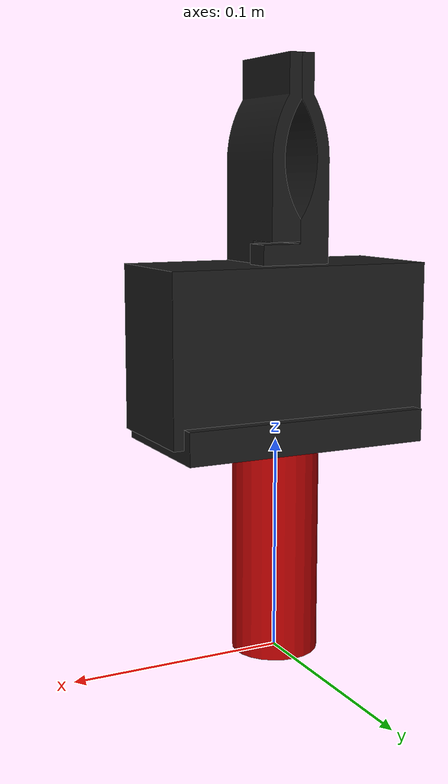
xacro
<?xml version="1.0" ?>
<robot name="za"
  xmlns:xacro="http://ros.org/wiki/xacro">
  <xacro:include filename="$(find ar_gripper)/urdf/ar_gripper_macro.xacro"/>
  <xacro:include filename="$(find ar_gripper)/urdf/ar_gripper_adapter_macro.xacro"/>

  <xacro:property name="tf_prefix" value="primary_" />

  <material name="${tf_prefix}Red">
    <color rgba="0.7 0.0 0.0 1.0"/>
  </material>

  <link name="world"/>

  <link name="base_link">
    <visual>
      <geometry>
        <cylinder length="0.1" radius="0.02"/>
      </geometry>
      <origin rpy="0 0 0" xyz="0 0 0.05"/>
      <material name="${tf_prefix}Red"/>
    </visual>
  </link>
  <joint name="world-base" type="fixed">
    <parent link="world"/>
    <child link="base_link"/>
  </joint>

  <link name="gripper_attachment" />
  <joint name="base-gripper_attachment" type="fixed">
    <parent link="base_link"/>
    <child link="gripper_attachment"/>
    <origin rpy="0 0 0" xyz="0 0 0.1"/>
  </joint>

  <xacro:ar_gripper_adapter tf_prefix="${tf_prefix}"/>
  <joint name="base-ar_gripper_adapter_mount" type="fixed">
    <parent link="gripper_attachment"/>
    <child link="${tf_prefix}ar_gripper_adapter_mount"/>
    <axis xyz="0 0 0"/>
    <origin rpy="0 0 0" xyz="0 0 0"/>
  </joint>

  <xacro:ar_gripper tf_prefix="${tf_prefix}"/>
  <joint name="adapter_attachment-ar_gripper_mount" type="fixed">
    <parent link="${tf_prefix}ar_gripper_adapter_attachment"/>
    <child link="${tf_prefix}ar_gripper_mount"/>
    <axis xyz="0 0 0"/>
    <origin rpy="0 0 0" xyz="0 0 0"/>
  </joint>

  <xacro:include filename="$(find ar_gripper)/urdf/ar_gripper_gz.ros2_control.xacro" />
  <xacro:ar_gripper_ros2_control name="primary" tf_prefix="" />

  <!-- Gazebo -->
  <gazebo reference="world">
  </gazebo>
  <gazebo>
    <plugin filename="gz_ros2_control-system" name="gz_ros2_control::GazeboSimROS2ControlPlugin">
      <parameters>$(find ar_gripper)/config/ar_gripper_sim_controllers.yaml</parameters>
    </plugin>
  </gazebo>

</robot>

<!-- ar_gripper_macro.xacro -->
<robot name="ar_gripper"
  xmlns:xacro="http://ros.org/wiki/xacro">
  <xacro:macro name="ar_gripper" params="tf_prefix sim:=false">

    <xacro:property name="FINGER_LOWER_LIMIT" value="0.0" />
    <xacro:property name="FINGER_UPPER_LIMIT" value="0.05" />
    <xacro:property name="FINGER_BODY_GAP" value="0.0005" />

    <material name="${tf_prefix}Black">
      <color rgba="0.1 0.1 0.1 1.0"/>
    </material>

    <link name="${tf_prefix}ar_gripper_mount" />

    <link name="${tf_prefix}ar_gripper_body">
      <visual>
        <geometry>
          <mesh filename="package://ar_gripper/meshes/body.stl"/>
        </geometry>
        <origin rpy="0.0 0.0 0.0" xyz="0 0 0"/>
        <material name="${tf_prefix}Black">
        </material>
      </visual>
      <collision>
        <geometry>
          <mesh filename="package://ar_gripper/meshes/body.stl"/>
        </geometry>
        <origin rpy="0.0 0.0 0.0" xyz="0 0 0"/>
      </collision>
      <inertial>
        <mass value="0.400" />
        <!-- These numbers are not correct -->
        <inertia ixx="0.001" ixy="0.0" ixz="0.0" iyy="0.001" iyz="0.0" izz="0.001"/>
      </inertial>
    </link>
    <joint name="${tf_prefix}ar_gripper_mount_body" type="fixed">
      <parent link="${tf_prefix}ar_gripper_mount"/>
      <child link="${tf_prefix}ar_gripper_body"/>
      <axis xyz="0 0 0"/>
      <origin rpy="0 0 0" xyz="0 0 0"/>
    </joint>

    <link name="${tf_prefix}ar_gripper_finger1">
      <visual>
        <geometry>
          <mesh filename="package://ar_gripper/meshes/finger.stl"/>
        </geometry>
        <origin rpy="0 0 0" xyz="0 0 0"/>
        <material name="${tf_prefix}Black">
        </material>
      </visual>
      <collision>
        <geometry>
          <mesh filename="package://ar_gripper/meshes/finger.stl"/>
        </geometry>
        <origin rpy="0 0 0" xyz="0 0 0"/>
      </collision>
      <inertial>
        <mass value="0.040"/>
        <!-- These numbers are not correct -->
        <inertia ixx="0.001" ixy="0.0" ixz="0.0" iyy="0.001" iyz="0.0" izz="0.001"/>
      </inertial>
    </link>
    <joint name="${tf_prefix}ar_gripper_body_finger1" type="prismatic">
      <limit effort="1000.0" lower="${FINGER_LOWER_LIMIT}" upper="${FINGER_UPPER_LIMIT}" velocity="0.031"/>
      <parent link="${tf_prefix}ar_gripper_body"/>
      <child link="${tf_prefix}ar_gripper_finger1"/>
      <axis xyz="-1 0 0"/>
      <origin rpy="0 0 0" xyz="0.0 0 ${0.0756 + FINGER_BODY_GAP}"/>
      <dynamics damping="0.3" />
    </joint>

    <link name="${tf_prefix}ar_gripper_finger2">
      <visual>
        <geometry>
          <mesh filename="package://ar_gripper/meshes/finger.stl"/>
        </geometry>
        <origin rpy="0 0 0" xyz="0 0 0"/>
        <material name="${tf_prefix}Black">
        </material>
      </visual>
      <collision>
        <geometry>
          <mesh filename="package://ar_gripper/meshes/finger.stl"/>
        </geometry>
        <origin rpy="0 0 0" xyz="0 0 0"/>
      </collision>
      <inertial>
        <mass value="0.040"/>
        <!-- These numbers are not correct -->
        <inertia ixx="0.001" ixy="0.0" ixz="0.0" iyy="0.001" iyz="0.0" izz="0.001"/>
      </inertial>
    </link>
    <joint name="${tf_prefix}ar_gripper_body_finger2" type="prismatic">
      <limit effort="1000.0" lower="${FINGER_LOWER_LIMIT}" upper="${FINGER_UPPER_LIMIT}" velocity="0.031"/>
      <parent link="${tf_prefix}ar_gripper_body"/>
      <child link="${tf_prefix}ar_gripper_finger2"/>
      <axis xyz="-1 0 0"/>
      <mimic joint="${tf_prefix}ar_gripper_body_finger1" multiplier="1.0" offset="0.0" />
      <origin rpy="0 0 ${pi}" xyz="0.0 0 ${0.0756 + FINGER_BODY_GAP}"/>
      <dynamics damping="0.3" />
    </joint>

  </xacro:macro>
</robot>

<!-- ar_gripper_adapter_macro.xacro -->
<robot name="ar_gripper_adapter"
  xmlns:xacro="http://www.ros.org/wiki/xacro">
  <xacro:macro name="ar_gripper_adapter" params="tf_prefix adapter_height:=0.006 adapter_mesh:=package://ar_gripper/meshes/adapter.stl">

    <link name="${tf_prefix}ar_gripper_adapter_mount" />

    <link name="${tf_prefix}ar_gripper_adapter">
      <visual>
        <geometry>
          <mesh filename="${adapter_mesh}"/>
        </geometry>
        <origin rpy="0.0 0.0 0.0" xyz="0 0 0"/>
        <material name="${tf_prefix}Black">
        </material>
      </visual>
      <collision>
        <geometry>
          <mesh filename="${adapter_mesh}"/>
        </geometry>
        <origin rpy="0.0 0.0 0.0" xyz="0 0 0"/>
      </collision>
      <inertial>
        <mass value="0.040" />
        <!-- These numbers are not correct -->
        <inertia ixx="0.001" ixy="0.0" ixz="0.0" iyy="0.001" iyz="0.0" izz="0.001"/>
      </inertial>
    </link>
    <joint name="${tf_prefix}ar_gripper_adapter_mount_adapter" type="fixed">
      <parent link="${tf_prefix}ar_gripper_adapter_mount"/>
      <child link="${tf_prefix}ar_gripper_adapter"/>
      <axis xyz="0 0 0"/>
      <origin rpy="0 0 0" xyz="0 0 0"/>
    </joint>

    <link name="${tf_prefix}ar_gripper_adapter_attachment" />
    <joint name="${tf_prefix}ar_gripper_adapter_adapter_attachment" type="fixed">
      <parent link="${tf_prefix}ar_gripper_adapter"/>
      <child link="${tf_prefix}ar_gripper_adapter_attachment"/>
      <axis xyz="0 0 0"/>
      <origin rpy="0 0 0" xyz="0 0 ${adapter_height}"/>
    </joint>
  </xacro:macro>

</robot>
